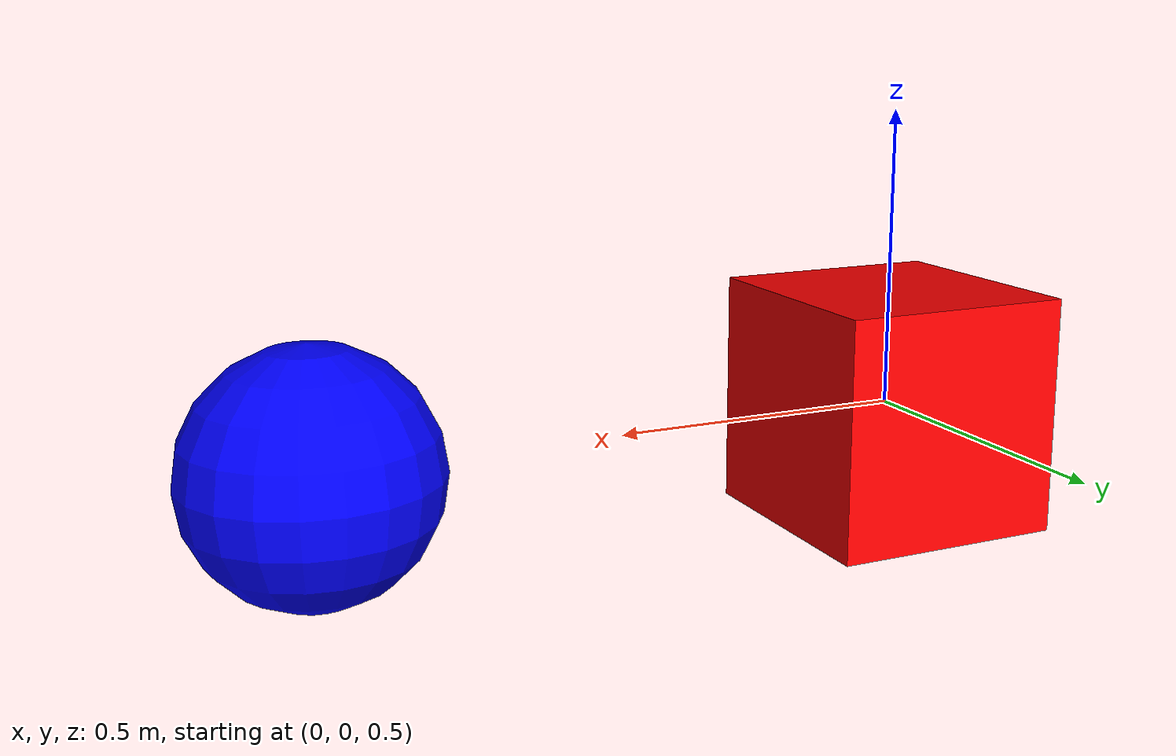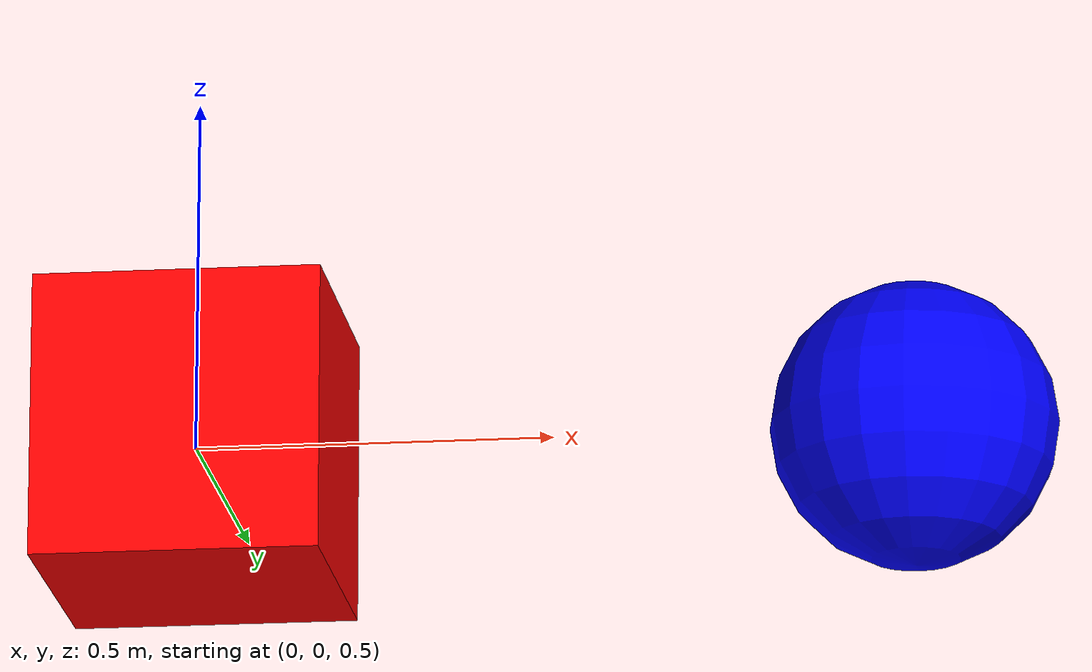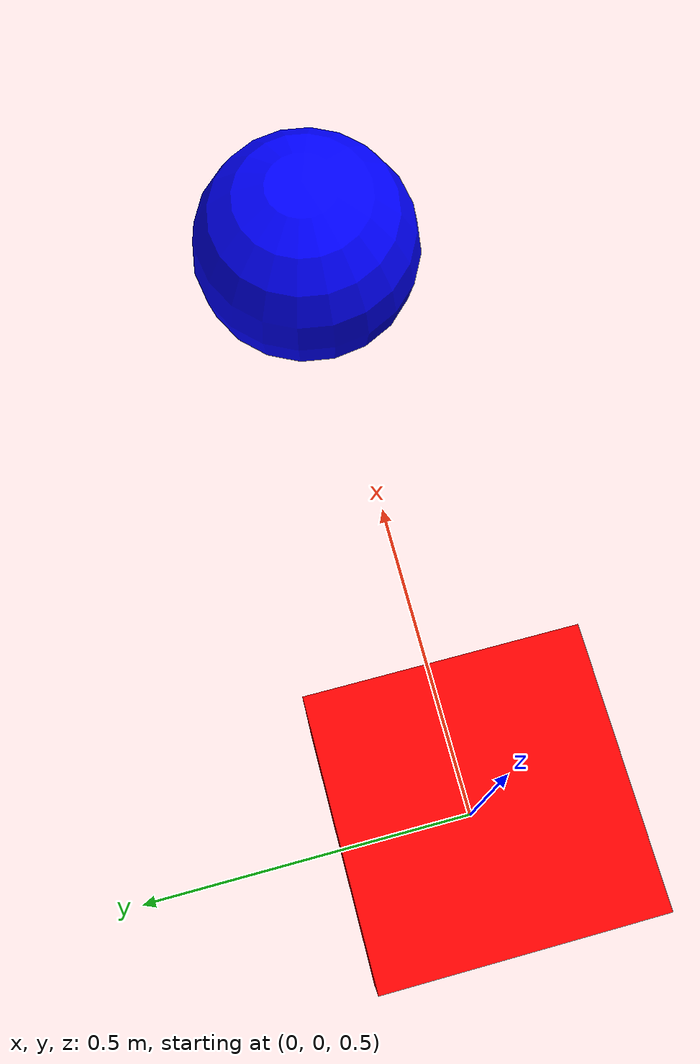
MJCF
<mujoco model="two_spheres">
    <worldbody>
        <!-- Ground plane -->
        <!-- First sphere: independent body -->
        <body name="robot" pos="0 0 0.5">
            <freejoint/>
            <geom name="robot_geom" type="box" size="0.2 0.2 0.2" rgba="1 0 0 1"/>
        </body>
        <!-- Second sphere: independent body -->
        <body name="target" pos="1 0 0.5">
            <freejoint/>
            <geom name="target_geom" type="sphere" size="0.2" rgba="0 0 1 1"/>
        </body>
    </worldbody>
    <option timestep="0.01" gravity="0 0 0"/>
    <default/>
</mujoco>
